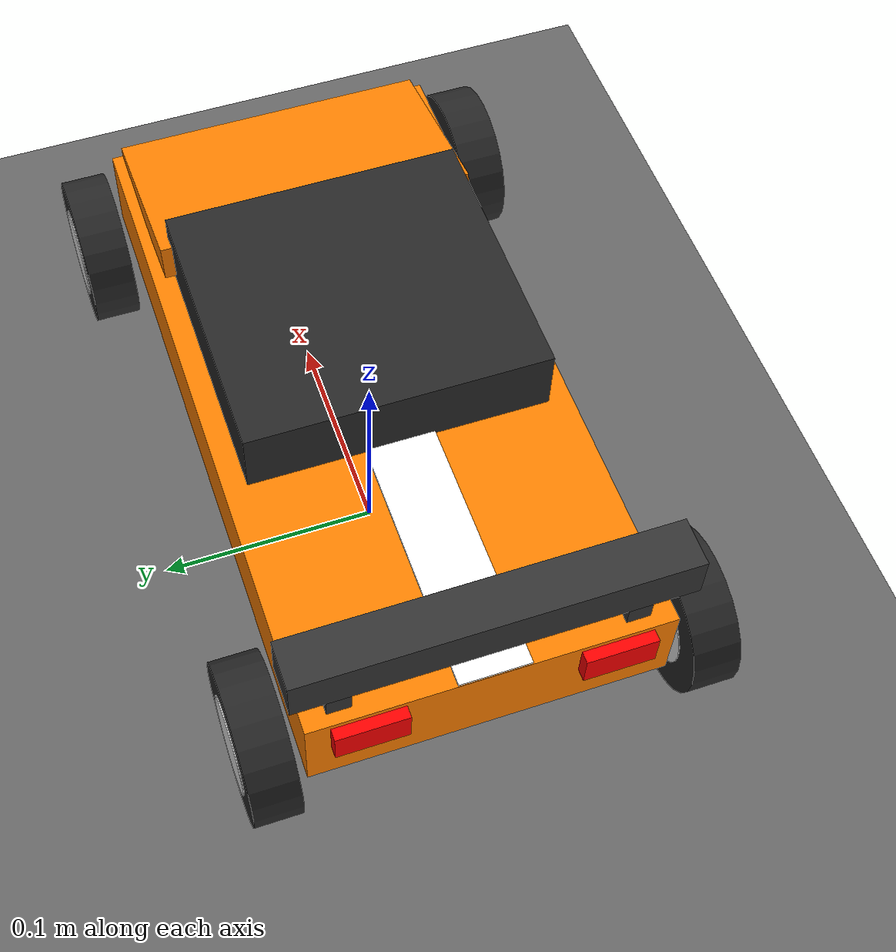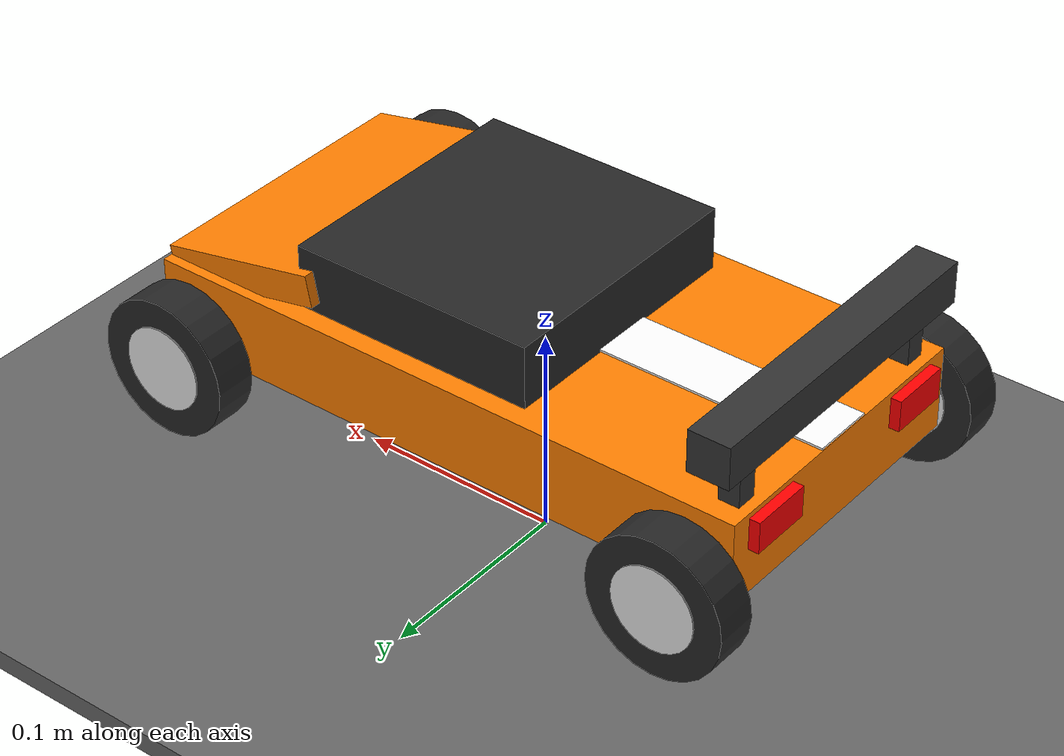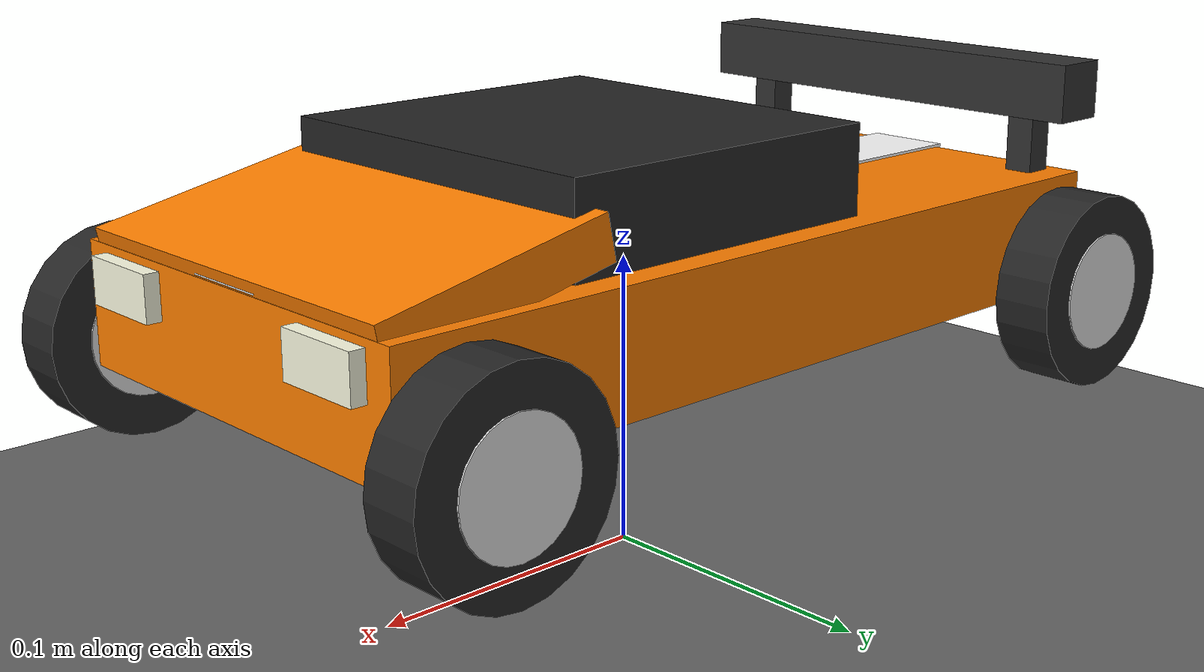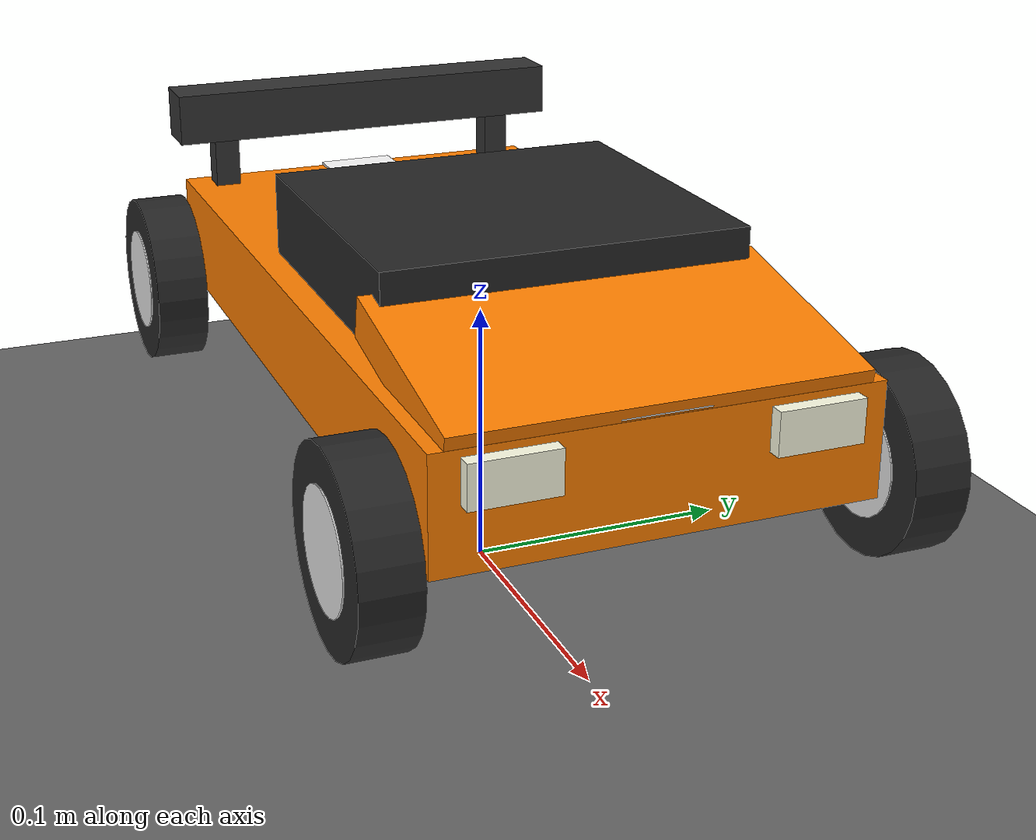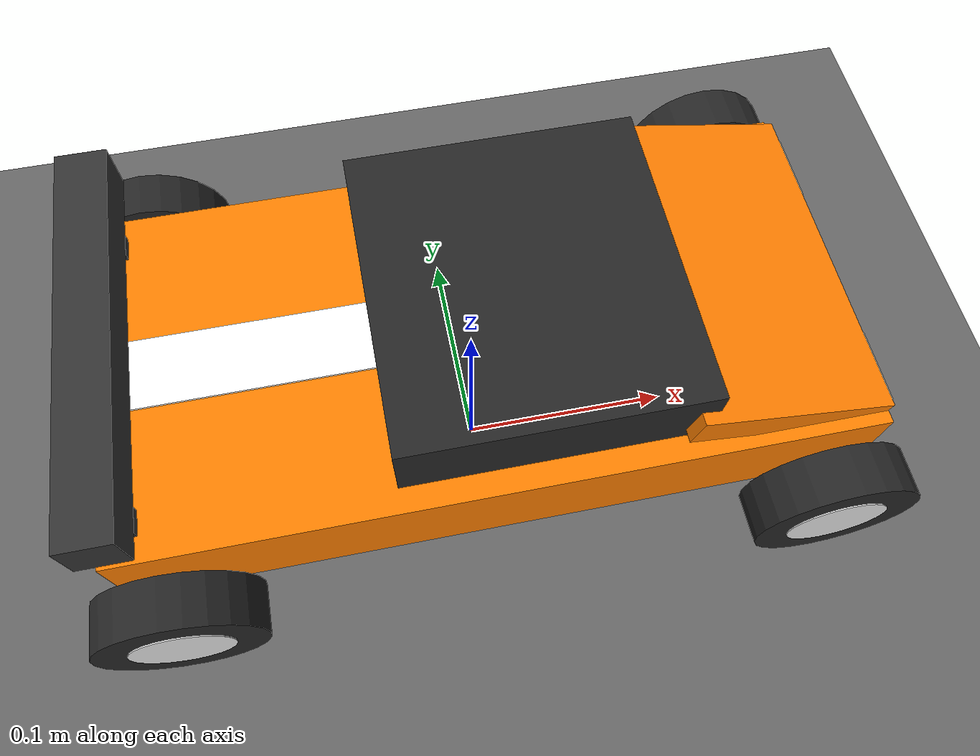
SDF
<?xml version="1.0" ?>
<sdf version="1.8">
  <!-- World name must be "drift_track" to match bridge_config.yaml topic paths -->
  <world name="drift_track">

    <physics name="1ms" type="ignored">
      <max_step_size>0.001</max_step_size>
      <real_time_factor>1.0</real_time_factor>
    </physics>

    <plugin filename="gz-sim-physics-system"
            name="gz::sim::systems::Physics">
    </plugin>
    <plugin filename="gz-sim-scene-broadcaster-system"
            name="gz::sim::systems::SceneBroadcaster">
    </plugin>
    <plugin filename="gz-sim-user-commands-system"
            name="gz::sim::systems::UserCommands">
    </plugin>
    <plugin filename="gz-sim-sensors-system"
            name="gz::sim::systems::Sensors">
      <render_engine>ogre2</render_engine>
    </plugin>
    <plugin filename="gz-sim-imu-system"
            name="gz::sim::systems::Imu">
    </plugin>

    <!-- Lighting -->
    <light type="directional" name="sun">
      <cast_shadows>true</cast_shadows>
      <pose>0 0 15 0 0 0</pose>
      <diffuse>1.0 1.0 0.95 1</diffuse>
      <specular>0.3 0.3 0.3 1</specular>
      <direction>-0.3 0.1 -0.9</direction>
    </light>

    <light type="directional" name="ambient_light">
      <pose>0 0 10 0 0 0</pose>
      <diffuse>0.4 0.4 0.45 1</diffuse>
      <specular>0 0 0 1</specular>
      <direction>0 0 -1</direction>
    </light>

    <!-- Large flat ground plane for drifting -->
    <model name="ground_plane">
      <static>true</static>
      <pose>0 0 0 0 0 0</pose>
      <link name="link">
        <collision name="collision">
          <geometry>
            <box>
              <size>100 100 0.01</size>
            </box>
          </geometry>
          <surface>
            <friction>
              <ode>
                <mu>1.0</mu>
                <mu2>1.0</mu2>
              </ode>
            </friction>
          </surface>
        </collision>
        <visual name="visual">
          <geometry>
            <box>
              <size>100 100 0.01</size>
            </box>
          </geometry>
          <material>
            <ambient>0.3 0.3 0.3 1</ambient>
            <diffuse>0.4 0.4 0.4 1</diffuse>
            <specular>0.1 0.1 0.1 1</specular>
          </material>
        </visual>
      </link>
    </model>

    <!-- Drift Car -->
    <include>
      <uri>model://drift_car</uri>
      <pose>0 0 0.05 0 0 0</pose>
    </include>

  </world>
</sdf>

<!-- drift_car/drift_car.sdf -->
<sdf version="1.8">
  <model name="drift_car">

    <!-- ==================== CHASSIS ==================== -->
    <link name="base_link">
      <pose>0 0 0.048 0 0 0</pose>

      <inertial>
        <mass>1.0</mass>
        <pose>0 0 0 0 0 0</pose>
        <inertia>
          <ixx>0.00192</ixx>
          <ixy>0</ixy>
          <ixz>0</ixz>
          <iyy>0.00763</iyy>
          <iyz>0</iyz>
          <izz>0.00938</izz>
        </inertia>
      </inertial>

      <!-- Main body (lower) -->
      <visual name="chassis_visual">
        <geometry>
          <box>
            <size>0.30 0.15 0.04</size>
          </box>
        </geometry>
        <material>
          <ambient>0.9 0.4 0.0 1</ambient>
          <diffuse>1.0 0.5 0.0 1</diffuse>
          <specular>0.5 0.5 0.5 1</specular>
        </material>
      </visual>

      <!-- Cabin/roof -->
      <visual name="cabin_visual">
        <pose>0.02 0 0.035 0 0 0</pose>
        <geometry>
          <box>
            <size>0.12 0.13 0.03</size>
          </box>
        </geometry>
        <material>
          <ambient>0.1 0.1 0.1 1</ambient>
          <diffuse>0.15 0.15 0.15 1</diffuse>
          <specular>0.8 0.8 0.8 1</specular>
        </material>
      </visual>

      <!-- Hood (front slope) -->
      <visual name="hood_visual">
        <pose>0.11 0 0.025 0 0.2 0</pose>
        <geometry>
          <box>
            <size>0.08 0.14 0.015</size>
          </box>
        </geometry>
        <material>
          <ambient>0.9 0.4 0.0 1</ambient>
          <diffuse>1.0 0.5 0.0 1</diffuse>
          <specular>0.5 0.5 0.5 1</specular>
        </material>
      </visual>

      <!-- Rear spoiler -->
      <visual name="spoiler_visual">
        <pose>-0.14 0 0.05 0 0 0</pose>
        <geometry>
          <box>
            <size>0.02 0.16 0.02</size>
          </box>
        </geometry>
        <material>
          <ambient>0.1 0.1 0.1 1</ambient>
          <diffuse>0.2 0.2 0.2 1</diffuse>
          <specular>0.3 0.3 0.3 1</specular>
        </material>
      </visual>

      <!-- Spoiler supports -->
      <visual name="spoiler_left_support">
        <pose>-0.14 0.06 0.035 0 0 0</pose>
        <geometry>
          <box>
            <size>0.01 0.01 0.03</size>
          </box>
        </geometry>
        <material>
          <ambient>0.1 0.1 0.1 1</ambient>
          <diffuse>0.2 0.2 0.2 1</diffuse>
        </material>
      </visual>
      <visual name="spoiler_right_support">
        <pose>-0.14 -0.06 0.035 0 0 0</pose>
        <geometry>
          <box>
            <size>0.01 0.01 0.03</size>
          </box>
        </geometry>
        <material>
          <ambient>0.1 0.1 0.1 1</ambient>
          <diffuse>0.2 0.2 0.2 1</diffuse>
        </material>
      </visual>

      <!-- Headlights -->
      <visual name="headlight_left">
        <pose>0.15 0.05 0.01 0 0 0</pose>
        <geometry>
          <box>
            <size>0.01 0.03 0.015</size>
          </box>
        </geometry>
        <material>
          <ambient>1 1 0.8 1</ambient>
          <diffuse>1 1 0.9 1</diffuse>
          <emissive>0.5 0.5 0.3 1</emissive>
        </material>
      </visual>
      <visual name="headlight_right">
        <pose>0.15 -0.05 0.01 0 0 0</pose>
        <geometry>
          <box>
            <size>0.01 0.03 0.015</size>
          </box>
        </geometry>
        <material>
          <ambient>1 1 0.8 1</ambient>
          <diffuse>1 1 0.9 1</diffuse>
          <emissive>0.5 0.5 0.3 1</emissive>
        </material>
      </visual>

      <!-- Taillights -->
      <visual name="taillight_left">
        <pose>-0.15 0.05 0.01 0 0 0</pose>
        <geometry>
          <box>
            <size>0.01 0.03 0.015</size>
          </box>
        </geometry>
        <material>
          <ambient>0.8 0 0 1</ambient>
          <diffuse>1 0 0 1</diffuse>
          <emissive>0.5 0 0 1</emissive>
        </material>
      </visual>
      <visual name="taillight_right">
        <pose>-0.15 -0.05 0.01 0 0 0</pose>
        <geometry>
          <box>
            <size>0.01 0.03 0.015</size>
          </box>
        </geometry>
        <material>
          <ambient>0.8 0 0 1</ambient>
          <diffuse>1 0 0 1</diffuse>
          <emissive>0.5 0 0 1</emissive>
        </material>
      </visual>

      <!-- Racing stripe (center) -->
      <visual name="stripe_visual">
        <pose>0 0 0.021 0 0 0</pose>
        <geometry>
          <box>
            <size>0.30 0.03 0.001</size>
          </box>
        </geometry>
        <material>
          <ambient>1 1 1 1</ambient>
          <diffuse>1 1 1 1</diffuse>
        </material>
      </visual>

      <collision name="chassis_collision">
        <geometry>
          <box>
            <size>0.30 0.15 0.04</size>
          </box>
        </geometry>
      </collision>

      <!-- IMU Sensor -->
      <sensor name="imu_sensor" type="imu">
        <always_on>true</always_on>
        <update_rate>100</update_rate>
        <visualize>false</visualize>
        <imu>
          <angular_velocity>
            <x>
              <noise type="gaussian">
                <mean>0.0</mean>
                <stddev>0.0002</stddev>
              </noise>
            </x>
            <y>
              <noise type="gaussian">
                <mean>0.0</mean>
                <stddev>0.0002</stddev>
              </noise>
            </y>
            <z>
              <noise type="gaussian">
                <mean>0.0</mean>
                <stddev>0.0002</stddev>
              </noise>
            </z>
          </angular_velocity>
          <linear_acceleration>
            <x>
              <noise type="gaussian">
                <mean>0.0</mean>
                <stddev>0.017</stddev>
              </noise>
            </x>
            <y>
              <noise type="gaussian">
                <mean>0.0</mean>
                <stddev>0.017</stddev>
              </noise>
            </y>
            <z>
              <noise type="gaussian">
                <mean>0.0</mean>
                <stddev>0.017</stddev>
              </noise>
            </z>
          </linear_acceleration>
        </imu>
      </sensor>

      <!-- Camera Sensor -->
    </link>

    <!-- ==================== REAR LEFT WHEEL ==================== -->
    <link name="rear_left_wheel">
      <pose relative_to="rear_left_wheel_joint">0 0 0 0 0 0</pose>

      <inertial>
        <mass>0.125</mass>
        <inertia>
          <ixx>0.000038</ixx>
          <ixy>0</ixy>
          <ixz>0</ixz>
          <iyy>0.000038</iyy>
          <iyz>0</iyz>
          <izz>0.000068</izz>
        </inertia>
      </inertial>

      <!-- Tire -->
      <visual name="tire_visual">
        <geometry>
          <cylinder>
            <radius>0.033</radius>
            <length>0.02</length>
          </cylinder>
        </geometry>
        <material>
          <ambient>0.1 0.1 0.1 1</ambient>
          <diffuse>0.15 0.15 0.15 1</diffuse>
          <specular>0.1 0.1 0.1 1</specular>
        </material>
      </visual>
      <!-- Rim -->
      <visual name="rim_visual">
        <geometry>
          <cylinder>
            <radius>0.02</radius>
            <length>0.021</length>
          </cylinder>
        </geometry>
        <material>
          <ambient>0.7 0.7 0.7 1</ambient>
          <diffuse>0.9 0.9 0.9 1</diffuse>
          <specular>1 1 1 1</specular>
        </material>
      </visual>

      <collision name="collision">
        <geometry>
          <sphere>
            <radius>0.033</radius>
          </sphere>
        </geometry>
        <surface>
          <friction>
            <ode>
              <mu>0.4</mu>
              <mu2>0.2</mu2>
              <slip1>0.08</slip1>
              <slip2>0.2</slip2>
            </ode>
          </friction>
        </surface>
      </collision>
    </link>

    <joint name="rear_left_wheel_joint" type="revolute">
      <pose relative_to="base_link">-0.13 0.09 -0.015 -1.5708 0 0</pose>
      <parent>base_link</parent>
      <child>rear_left_wheel</child>
      <axis>
        <xyz>0 0 1</xyz>
        <limit>
          <lower>-1.79769e+308</lower>
          <upper>1.79769e+308</upper>
          <effort>10</effort>
          <velocity>100</velocity>
        </limit>
        <dynamics>
          <damping>0.001</damping>
          <friction>0.001</friction>
        </dynamics>
      </axis>
    </joint>

    <!-- ==================== REAR RIGHT WHEEL ==================== -->
    <link name="rear_right_wheel">
      <pose relative_to="rear_right_wheel_joint">0 0 0 0 0 0</pose>

      <inertial>
        <mass>0.125</mass>
        <inertia>
          <ixx>0.000038</ixx>
          <ixy>0</ixy>
          <ixz>0</ixz>
          <iyy>0.000038</iyy>
          <iyz>0</iyz>
          <izz>0.000068</izz>
        </inertia>
      </inertial>

      <!-- Tire -->
      <visual name="tire_visual">
        <geometry>
          <cylinder>
            <radius>0.033</radius>
            <length>0.02</length>
          </cylinder>
        </geometry>
        <material>
          <ambient>0.1 0.1 0.1 1</ambient>
          <diffuse>0.15 0.15 0.15 1</diffuse>
          <specular>0.1 0.1 0.1 1</specular>
        </material>
      </visual>
      <!-- Rim -->
      <visual name="rim_visual">
        <geometry>
          <cylinder>
            <radius>0.02</radius>
            <length>0.021</length>
          </cylinder>
        </geometry>
        <material>
          <ambient>0.7 0.7 0.7 1</ambient>
          <diffuse>0.9 0.9 0.9 1</diffuse>
          <specular>1 1 1 1</specular>
        </material>
      </visual>

      <collision name="collision">
        <geometry>
          <sphere>
            <radius>0.033</radius>
          </sphere>
        </geometry>
        <surface>
          <friction>
            <ode>
              <mu>0.4</mu>
              <mu2>0.2</mu2>
              <slip1>0.08</slip1>
              <slip2>0.2</slip2>
            </ode>
          </friction>
        </surface>
      </collision>
    </link>

    <joint name="rear_right_wheel_joint" type="revolute">
      <pose relative_to="base_link">-0.13 -0.09 -0.015 -1.5708 0 0</pose>
      <parent>base_link</parent>
      <child>rear_right_wheel</child>
      <axis>
        <xyz>0 0 1</xyz>
        <limit>
          <lower>-1.79769e+308</lower>
          <upper>1.79769e+308</upper>
          <effort>10</effort>
          <velocity>100</velocity>
        </limit>
        <dynamics>
          <damping>0.001</damping>
          <friction>0.001</friction>
        </dynamics>
      </axis>
    </joint>

    <!-- ==================== FRONT LEFT STEERING + WHEEL ==================== -->
    <link name="front_left_steering_link">
      <pose relative_to="front_left_steering_joint">0 0 0 0 0 0</pose>

      <inertial>
        <mass>0.01</mass>
        <inertia>
          <ixx>0.000001</ixx>
          <ixy>0</ixy>
          <ixz>0</ixz>
          <iyy>0.000001</iyy>
          <iyz>0</iyz>
          <izz>0.000001</izz>
        </inertia>
      </inertial>
    </link>

    <joint name="front_left_steering_joint" type="revolute">
      <pose relative_to="base_link">0.13 0.09 -0.015 0 0 0</pose>
      <parent>base_link</parent>
      <child>front_left_steering_link</child>
      <axis>
        <xyz>0 0 1</xyz>
        <limit>
          <lower>-0.6</lower>
          <upper>0.6</upper>
          <effort>10</effort>
          <velocity>5</velocity>
        </limit>
        <dynamics>
          <damping>0.01</damping>
          <friction>0.0</friction>
        </dynamics>
      </axis>
    </joint>

    <link name="front_left_wheel">
      <pose relative_to="front_left_wheel_joint">0 0 0 0 0 0</pose>

      <inertial>
        <mass>0.125</mass>
        <inertia>
          <ixx>0.000038</ixx>
          <ixy>0</ixy>
          <ixz>0</ixz>
          <iyy>0.000038</iyy>
          <iyz>0</iyz>
          <izz>0.000068</izz>
        </inertia>
      </inertial>

      <!-- Tire -->
      <visual name="tire_visual">
        <geometry>
          <cylinder>
            <radius>0.033</radius>
            <length>0.02</length>
          </cylinder>
        </geometry>
        <material>
          <ambient>0.1 0.1 0.1 1</ambient>
          <diffuse>0.15 0.15 0.15 1</diffuse>
          <specular>0.1 0.1 0.1 1</specular>
        </material>
      </visual>
      <!-- Rim -->
      <visual name="rim_visual">
        <geometry>
          <cylinder>
            <radius>0.02</radius>
            <length>0.021</length>
          </cylinder>
        </geometry>
        <material>
          <ambient>0.7 0.7 0.7 1</ambient>
          <diffuse>0.9 0.9 0.9 1</diffuse>
          <specular>1 1 1 1</specular>
        </material>
      </visual>

      <collision name="collision">
        <geometry>
          <sphere>
            <radius>0.033</radius>
          </sphere>
        </geometry>
        <surface>
          <friction>
            <ode>
              <mu>1.0</mu>
              <mu2>1.0</mu2>
              <slip1>0.0</slip1>
              <slip2>0.0</slip2>
            </ode>
          </friction>
        </surface>
      </collision>
    </link>

    <joint name="front_left_wheel_joint" type="revolute">
      <pose relative_to="front_left_steering_link">0 0 0 -1.5708 0 0</pose>
      <parent>front_left_steering_link</parent>
      <child>front_left_wheel</child>
      <axis>
        <xyz>0 0 1</xyz>
        <limit>
          <lower>-1.79769e+308</lower>
          <upper>1.79769e+308</upper>
          <effort>0</effort>
          <velocity>100</velocity>
        </limit>
        <dynamics>
          <damping>0.0001</damping>
          <friction>0.0001</friction>
        </dynamics>
      </axis>
    </joint>

    <!-- ==================== FRONT RIGHT STEERING + WHEEL ==================== -->
    <link name="front_right_steering_link">
      <pose relative_to="front_right_steering_joint">0 0 0 0 0 0</pose>

      <inertial>
        <mass>0.01</mass>
        <inertia>
          <ixx>0.000001</ixx>
          <ixy>0</ixy>
          <ixz>0</ixz>
          <iyy>0.000001</iyy>
          <iyz>0</iyz>
          <izz>0.000001</izz>
        </inertia>
      </inertial>
    </link>

    <joint name="front_right_steering_joint" type="revolute">
      <pose relative_to="base_link">0.13 -0.09 -0.015 0 0 0</pose>
      <parent>base_link</parent>
      <child>front_right_steering_link</child>
      <axis>
        <xyz>0 0 1</xyz>
        <limit>
          <lower>-0.6</lower>
          <upper>0.6</upper>
          <effort>10</effort>
          <velocity>5</velocity>
        </limit>
        <dynamics>
          <damping>0.01</damping>
          <friction>0.0</friction>
        </dynamics>
      </axis>
    </joint>

    <link name="front_right_wheel">
      <pose relative_to="front_right_wheel_joint">0 0 0 0 0 0</pose>

      <inertial>
        <mass>0.125</mass>
        <inertia>
          <ixx>0.000038</ixx>
          <ixy>0</ixy>
          <ixz>0</ixz>
          <iyy>0.000038</iyy>
          <iyz>0</iyz>
          <izz>0.000068</izz>
        </inertia>
      </inertial>

      <!-- Tire -->
      <visual name="tire_visual">
        <geometry>
          <cylinder>
            <radius>0.033</radius>
            <length>0.02</length>
          </cylinder>
        </geometry>
        <material>
          <ambient>0.1 0.1 0.1 1</ambient>
          <diffuse>0.15 0.15 0.15 1</diffuse>
          <specular>0.1 0.1 0.1 1</specular>
        </material>
      </visual>
      <!-- Rim -->
      <visual name="rim_visual">
        <geometry>
          <cylinder>
            <radius>0.02</radius>
            <length>0.021</length>
          </cylinder>
        </geometry>
        <material>
          <ambient>0.7 0.7 0.7 1</ambient>
          <diffuse>0.9 0.9 0.9 1</diffuse>
          <specular>1 1 1 1</specular>
        </material>
      </visual>

      <collision name="collision">
        <geometry>
          <sphere>
            <radius>0.033</radius>
          </sphere>
        </geometry>
        <surface>
          <friction>
            <ode>
              <mu>1.0</mu>
              <mu2>1.0</mu2>
              <slip1>0.0</slip1>
              <slip2>0.0</slip2>
            </ode>
          </friction>
        </surface>
      </collision>
    </link>

    <joint name="front_right_wheel_joint" type="revolute">
      <pose relative_to="front_right_steering_link">0 0 0 -1.5708 0 0</pose>
      <parent>front_right_steering_link</parent>
      <child>front_right_wheel</child>
      <axis>
        <xyz>0 0 1</xyz>
        <limit>
          <lower>-1.79769e+308</lower>
          <upper>1.79769e+308</upper>
          <effort>0</effort>
          <velocity>100</velocity>
        </limit>
        <dynamics>
          <damping>0.0001</damping>
          <friction>0.0001</friction>
        </dynamics>
      </axis>
    </joint>

    <!-- ==================== ACKERMANN STEERING PLUGIN ==================== -->
    <plugin
      filename="gz-sim-ackermann-steering-system"
      name="gz::sim::systems::AckermannSteering">

      <!-- Drive wheels (rear) -->
      <left_joint>rear_left_wheel_joint</left_joint>
      <right_joint>rear_right_wheel_joint</right_joint>

      <!-- Steering joints (front) -->
      <left_steering_joint>front_left_steering_joint</left_steering_joint>
      <right_steering_joint>front_right_steering_joint</right_steering_joint>

      <!-- Geometry -->
      <wheel_base>0.26</wheel_base>
      <wheel_separation>0.18</wheel_separation>
      <kingpin_width>0.16</kingpin_width>
      <wheel_radius>0.033</wheel_radius>
      <steering_limit>0.6</steering_limit>

      <!-- Velocity limits -->
      <min_velocity>-3.0</min_velocity>
      <max_velocity>3.0</max_velocity>
      <min_acceleration>-2.0</min_acceleration>
      <max_acceleration>2.0</max_acceleration>

      <!-- Odometry -->
      <odom_publish_frequency>50</odom_publish_frequency>
      <odom_topic>odometry</odom_topic>
      <tf_topic>tf</tf_topic>
      <frame_id>odom</frame_id>
      <child_frame_id>base_link</child_frame_id>

    </plugin>

    <!-- Publish joint states for monitoring -->
    <plugin
      filename="gz-sim-joint-state-publisher-system"
      name="gz::sim::systems::JointStatePublisher">
      <joint_name>front_left_steering_joint</joint_name>
      <joint_name>front_right_steering_joint</joint_name>
      <joint_name>front_left_wheel_joint</joint_name>
      <joint_name>front_right_wheel_joint</joint_name>
      <joint_name>rear_left_wheel_joint</joint_name>
      <joint_name>rear_right_wheel_joint</joint_name>
    </plugin>

    <!-- Ground truth odometry for validation - publishes actual chassis motion with vy -->
    <plugin
      filename="gz-sim-odometry-publisher-system"
      name="gz::sim::systems::OdometryPublisher">
      <odom_publish_frequency>50</odom_publish_frequency>
      <odom_topic>odometry_ground_truth</odom_topic>
      <odom_frame>odom</odom_frame>
      <robot_base_frame>base_link</robot_base_frame>
    </plugin>

  </model>
</sdf>
